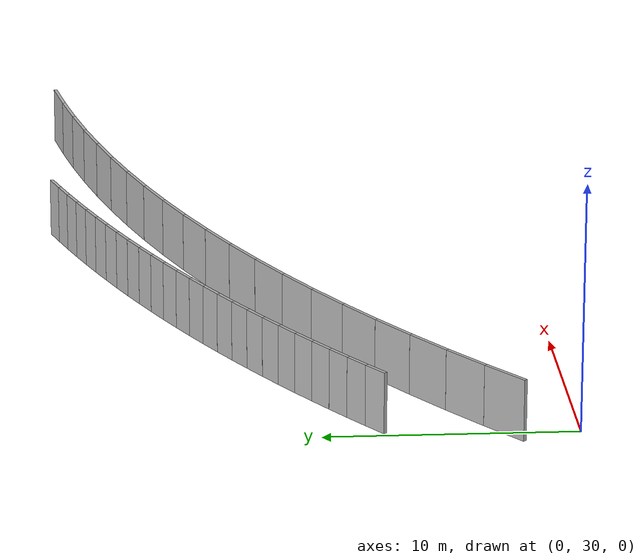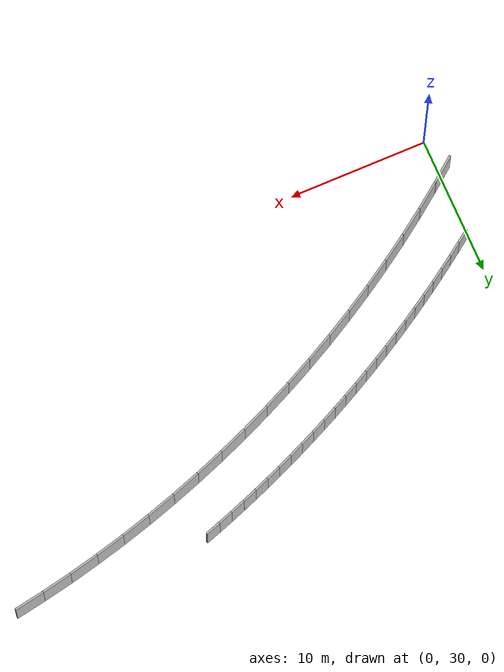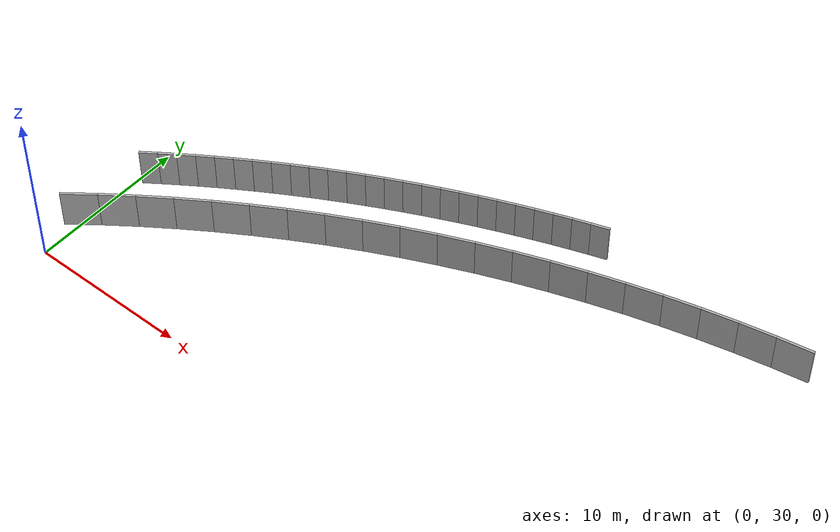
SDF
<?xml version="1.0" ?>
<sdf version="1.6">
  <model name="sps_1304">
    <pose frame="">0 0 0 0 -0 0</pose>
    <static>1</static>
    <self_collide>0</self_collide>
    <allow_auto_disable>0</allow_auto_disable>
    <link name="Wall1653">
      <kinematic>0</kinematic>
      <gravity>1</gravity>
      <self_collide>0</self_collide>
      <collision name="collision">
        <geometry>
          <box>
            <size>1.1106 0.15 2.5</size>
          </box>
        </geometry>
        <pose frame="">0 0 0 0 -0 0</pose>
      </collision>
      <visual name="visual">
        <geometry>
          <box>
            <size>1.1106 0.15 2.5</size>
          </box>
        </geometry>
        <pose frame="">0 0 0 0 -0 0</pose>
        <cast_shadows>1</cast_shadows>
        <transparency>0.0</transparency>
      </visual>
      <pose frame="">0.738059 37.8674 1.25 0 -0 0.624089</pose>
    </link>
    <link name="Wall1654">
      <kinematic>0</kinematic>
      <gravity>1</gravity>
      <self_collide>0</self_collide>
      <collision name="collision">
        <geometry>
          <box>
            <size>1.11045 0.15 2.5</size>
          </box>
        </geometry>
        <pose frame="">0 0 0 0 -0 0</pose>
      </collision>
      <visual name="visual">
        <geometry>
          <box>
            <size>1.11045 0.15 2.5</size>
          </box>
        </geometry>
        <pose frame="">0 0 0 0 -0 0</pose>
        <cast_shadows>1</cast_shadows>
        <transparency>0.0</transparency>
      </visual>
      <pose frame="">1.64327 38.5107 1.25 0 -0 0.611572</pose>
    </link>
    <link name="Wall1655">
      <kinematic>0</kinematic>
      <gravity>1</gravity>
      <self_collide>0</self_collide>
      <collision name="collision">
        <geometry>
          <box>
            <size>1.11047 0.15 2.5</size>
          </box>
        </geometry>
        <pose frame="">0 0 0 0 -0 0</pose>
      </collision>
      <visual name="visual">
        <geometry>
          <box>
            <size>1.11047 0.15 2.5</size>
          </box>
        </geometry>
        <pose frame="">0 0 0 0 -0 0</pose>
        <cast_shadows>1</cast_shadows>
        <transparency>0.0</transparency>
      </visual>
      <pose frame="">2.55645 39.1425 1.25 0 -0 0.598933</pose>
    </link>
    <link name="Wall1656">
      <kinematic>0</kinematic>
      <gravity>1</gravity>
      <self_collide>0</self_collide>
      <collision name="collision">
        <geometry>
          <box>
            <size>1.11055 0.15 2.5</size>
          </box>
        </geometry>
        <pose frame="">0 0 0 0 -0 0</pose>
      </collision>
      <visual name="visual">
        <geometry>
          <box>
            <size>1.11055 0.15 2.5</size>
          </box>
        </geometry>
        <pose frame="">0 0 0 0 -0 0</pose>
        <cast_shadows>1</cast_shadows>
        <transparency>0.0</transparency>
      </visual>
      <pose frame="">3.47774 39.7625 1.25 0 -0 0.585762</pose>
    </link>
    <link name="Wall1657">
      <kinematic>0</kinematic>
      <gravity>1</gravity>
      <self_collide>0</self_collide>
      <collision name="collision">
        <geometry>
          <box>
            <size>1.11051 0.15 2.5</size>
          </box>
        </geometry>
        <pose frame="">0 0 0 0 -0 0</pose>
      </collision>
      <visual name="visual">
        <geometry>
          <box>
            <size>1.11051 0.15 2.5</size>
          </box>
        </geometry>
        <pose frame="">0 0 0 0 -0 0</pose>
        <cast_shadows>1</cast_shadows>
        <transparency>0.0</transparency>
      </visual>
      <pose frame="">4.40685 40.3708 1.25 0 -0 0.573567</pose>
    </link>
    <link name="Wall1658">
      <kinematic>0</kinematic>
      <gravity>1</gravity>
      <self_collide>0</self_collide>
      <collision name="collision">
        <geometry>
          <box>
            <size>1.11041 0.15 2.5</size>
          </box>
        </geometry>
        <pose frame="">0 0 0 0 -0 0</pose>
      </collision>
      <visual name="visual">
        <geometry>
          <box>
            <size>1.11041 0.15 2.5</size>
          </box>
        </geometry>
        <pose frame="">0 0 0 0 -0 0</pose>
        <cast_shadows>1</cast_shadows>
        <transparency>0.0</transparency>
      </visual>
      <pose frame="">5.34334 40.9675 1.25 0 -0 0.561046</pose>
    </link>
    <link name="Wall1659">
      <kinematic>0</kinematic>
      <gravity>1</gravity>
      <self_collide>0</self_collide>
      <collision name="collision">
        <geometry>
          <box>
            <size>1.11051 0.15 2.5</size>
          </box>
        </geometry>
        <pose frame="">0 0 0 0 -0 0</pose>
      </collision>
      <visual name="visual">
        <geometry>
          <box>
            <size>1.11051 0.15 2.5</size>
          </box>
        </geometry>
        <pose frame="">0 0 0 0 -0 0</pose>
        <cast_shadows>1</cast_shadows>
        <transparency>0.0</transparency>
      </visual>
      <pose frame="">6.28725 41.5524 1.25 0 -0 0.54845</pose>
    </link>
    <link name="Wall1660">
      <kinematic>0</kinematic>
      <gravity>1</gravity>
      <self_collide>0</self_collide>
      <collision name="collision">
        <geometry>
          <box>
            <size>1.11061 0.15 2.5</size>
          </box>
        </geometry>
        <pose frame="">0 0 0 0 -0 0</pose>
      </collision>
      <visual name="visual">
        <geometry>
          <box>
            <size>1.11061 0.15 2.5</size>
          </box>
        </geometry>
        <pose frame="">0 0 0 0 -0 0</pose>
        <cast_shadows>1</cast_shadows>
        <transparency>0.0</transparency>
      </visual>
      <pose frame="">7.23855 42.1254 1.25 0 -0 0.53582</pose>
    </link>
    <link name="Wall1661">
      <kinematic>0</kinematic>
      <gravity>1</gravity>
      <self_collide>0</self_collide>
      <collision name="collision">
        <geometry>
          <box>
            <size>1.11046 0.15 2.5</size>
          </box>
        </geometry>
        <pose frame="">0 0 0 0 -0 0</pose>
      </collision>
      <visual name="visual">
        <geometry>
          <box>
            <size>1.11046 0.15 2.5</size>
          </box>
        </geometry>
        <pose frame="">0 0 0 0 -0 0</pose>
        <cast_shadows>1</cast_shadows>
        <transparency>0.0</transparency>
      </visual>
      <pose frame="">8.19704 42.6862 1.25 0 -0 0.522971</pose>
    </link>
    <link name="Wall1662">
      <kinematic>0</kinematic>
      <gravity>1</gravity>
      <self_collide>0</self_collide>
      <collision name="collision">
        <geometry>
          <box>
            <size>1.11045 0.15 2.5</size>
          </box>
        </geometry>
        <pose frame="">0 0 0 0 -0 0</pose>
      </collision>
      <visual name="visual">
        <geometry>
          <box>
            <size>1.11045 0.15 2.5</size>
          </box>
        </geometry>
        <pose frame="">0 0 0 0 -0 0</pose>
        <cast_shadows>1</cast_shadows>
        <transparency>0.0</transparency>
      </visual>
      <pose frame="">9.16256 43.2347 1.25 0 -0 0.51027</pose>
    </link>
    <link name="Wall1663">
      <kinematic>0</kinematic>
      <gravity>1</gravity>
      <self_collide>0</self_collide>
      <collision name="collision">
        <geometry>
          <box>
            <size>1.11057 0.15 2.5</size>
          </box>
        </geometry>
        <pose frame="">0 0 0 0 -0 0</pose>
      </collision>
      <visual name="visual">
        <geometry>
          <box>
            <size>1.11057 0.15 2.5</size>
          </box>
        </geometry>
        <pose frame="">0 0 0 0 -0 0</pose>
        <cast_shadows>1</cast_shadows>
        <transparency>0.0</transparency>
      </visual>
      <pose frame="">10.135 43.771 1.25 0 -0 0.497719</pose>
    </link>
    <link name="Wall1664">
      <kinematic>0</kinematic>
      <gravity>1</gravity>
      <self_collide>0</self_collide>
      <collision name="collision">
        <geometry>
          <box>
            <size>1.11032 0.15 2.5</size>
          </box>
        </geometry>
        <pose frame="">0 0 0 0 -0 0</pose>
      </collision>
      <visual name="visual">
        <geometry>
          <box>
            <size>1.11032 0.15 2.5</size>
          </box>
        </geometry>
        <pose frame="">0 0 0 0 -0 0</pose>
        <cast_shadows>1</cast_shadows>
        <transparency>0.0</transparency>
      </visual>
      <pose frame="">11.114 44.295 1.25 0 -0 0.485185</pose>
    </link>
    <link name="Wall1665">
      <kinematic>0</kinematic>
      <gravity>1</gravity>
      <self_collide>0</self_collide>
      <collision name="collision">
        <geometry>
          <box>
            <size>1.11052 0.15 2.5</size>
          </box>
        </geometry>
        <pose frame="">0 0 0 0 -0 0</pose>
      </collision>
      <visual name="visual">
        <geometry>
          <box>
            <size>1.11052 0.15 2.5</size>
          </box>
        </geometry>
        <pose frame="">0 0 0 0 -0 0</pose>
        <cast_shadows>1</cast_shadows>
        <transparency>0.0</transparency>
      </visual>
      <pose frame="">12.0994 44.8067 1.25 0 -0 0.472644</pose>
    </link>
    <link name="Wall1666">
      <kinematic>0</kinematic>
      <gravity>1</gravity>
      <self_collide>0</self_collide>
      <collision name="collision">
        <geometry>
          <box>
            <size>1.11045 0.15 2.5</size>
          </box>
        </geometry>
        <pose frame="">0 0 0 0 -0 0</pose>
      </collision>
      <visual name="visual">
        <geometry>
          <box>
            <size>1.11045 0.15 2.5</size>
          </box>
        </geometry>
        <pose frame="">0 0 0 0 -0 0</pose>
        <cast_shadows>1</cast_shadows>
        <transparency>0.0</transparency>
      </visual>
      <pose frame="">13.0913 45.306 1.25 0 -0 0.460059</pose>
    </link>
    <link name="Wall1667">
      <kinematic>0</kinematic>
      <gravity>1</gravity>
      <self_collide>0</self_collide>
      <collision name="collision">
        <geometry>
          <box>
            <size>1.11051 0.15 2.5</size>
          </box>
        </geometry>
        <pose frame="">0 0 0 0 -0 0</pose>
      </collision>
      <visual name="visual">
        <geometry>
          <box>
            <size>1.11051 0.15 2.5</size>
          </box>
        </geometry>
        <pose frame="">0 0 0 0 -0 0</pose>
        <cast_shadows>1</cast_shadows>
        <transparency>0.0</transparency>
      </visual>
      <pose frame="">14.0894 45.7927 1.25 0 -0 0.447375</pose>
    </link>
    <link name="Wall1668">
      <kinematic>0</kinematic>
      <gravity>1</gravity>
      <self_collide>0</self_collide>
      <collision name="collision">
        <geometry>
          <box>
            <size>1.11062 0.15 2.5</size>
          </box>
        </geometry>
        <pose frame="">0 0 0 0 -0 0</pose>
      </collision>
      <visual name="visual">
        <geometry>
          <box>
            <size>1.11062 0.15 2.5</size>
          </box>
        </geometry>
        <pose frame="">0 0 0 0 -0 0</pose>
        <cast_shadows>1</cast_shadows>
        <transparency>0.0</transparency>
      </visual>
      <pose frame="">15.0937 46.2667 1.25 0 -0 0.434569</pose>
    </link>
    <link name="Wall1669">
      <kinematic>0</kinematic>
      <gravity>1</gravity>
      <self_collide>0</self_collide>
      <collision name="collision">
        <geometry>
          <box>
            <size>1.1104 0.15 2.5</size>
          </box>
        </geometry>
        <pose frame="">0 0 0 0 -0 0</pose>
      </collision>
      <visual name="visual">
        <geometry>
          <box>
            <size>1.1104 0.15 2.5</size>
          </box>
        </geometry>
        <pose frame="">0 0 0 0 -0 0</pose>
        <cast_shadows>1</cast_shadows>
        <transparency>0.0</transparency>
      </visual>
      <pose frame="">16.1039 46.7279 1.25 0 -0 0.421969</pose>
    </link>
    <link name="Wall1670">
      <kinematic>0</kinematic>
      <gravity>1</gravity>
      <self_collide>0</self_collide>
      <collision name="collision">
        <geometry>
          <box>
            <size>1.11055 0.15 2.5</size>
          </box>
        </geometry>
        <pose frame="">0 0 0 0 -0 0</pose>
      </collision>
      <visual name="visual">
        <geometry>
          <box>
            <size>1.11055 0.15 2.5</size>
          </box>
        </geometry>
        <pose frame="">0 0 0 0 -0 0</pose>
        <cast_shadows>1</cast_shadows>
        <transparency>0.0</transparency>
      </visual>
      <pose frame="">17.1198 47.1763 1.25 0 -0 0.409352</pose>
    </link>
    <link name="Wall1671">
      <kinematic>0</kinematic>
      <gravity>1</gravity>
      <self_collide>0</self_collide>
      <collision name="collision">
        <geometry>
          <box>
            <size>1.11035 0.15 2.5</size>
          </box>
        </geometry>
        <pose frame="">0 0 0 0 -0 0</pose>
      </collision>
      <visual name="visual">
        <geometry>
          <box>
            <size>1.11035 0.15 2.5</size>
          </box>
        </geometry>
        <pose frame="">0 0 0 0 -0 0</pose>
        <cast_shadows>1</cast_shadows>
        <transparency>0.0</transparency>
      </visual>
      <pose frame="">18.1413 47.6119 1.25 0 -0 0.39688</pose>
    </link>
    <link name="Wall1672">
      <kinematic>0</kinematic>
      <gravity>1</gravity>
      <self_collide>0</self_collide>
      <collision name="collision">
        <geometry>
          <box>
            <size>1.11038 0.15 2.5</size>
          </box>
        </geometry>
        <pose frame="">0 0 0 0 -0 0</pose>
      </collision>
      <visual name="visual">
        <geometry>
          <box>
            <size>1.11038 0.15 2.5</size>
          </box>
        </geometry>
        <pose frame="">0 0 0 0 -0 0</pose>
        <cast_shadows>1</cast_shadows>
        <transparency>0.0</transparency>
      </visual>
      <pose frame="">19.168 48.0347 1.25 0 -0 0.384385</pose>
    </link>
    <link name="Wall1673">
      <kinematic>0</kinematic>
      <gravity>1</gravity>
      <self_collide>0</self_collide>
      <collision name="collision">
        <geometry>
          <box>
            <size>1.11057 0.15 2.5</size>
          </box>
        </geometry>
        <pose frame="">0 0 0 0 -0 0</pose>
      </collision>
      <visual name="visual">
        <geometry>
          <box>
            <size>1.11057 0.15 2.5</size>
          </box>
        </geometry>
        <pose frame="">0 0 0 0 -0 0</pose>
        <cast_shadows>1</cast_shadows>
        <transparency>0.0</transparency>
      </visual>
      <pose frame="">20.2 48.4445 1.25 0 -0 0.371546</pose>
    </link>
    <link name="Wall1674">
      <kinematic>0</kinematic>
      <gravity>1</gravity>
      <self_collide>0</self_collide>
      <collision name="collision">
        <geometry>
          <box>
            <size>1.11036 0.15 2.5</size>
          </box>
        </geometry>
        <pose frame="">0 0 0 0 -0 0</pose>
      </collision>
      <visual name="visual">
        <geometry>
          <box>
            <size>1.11036 0.15 2.5</size>
          </box>
        </geometry>
        <pose frame="">0 0 0 0 -0 0</pose>
        <cast_shadows>1</cast_shadows>
        <transparency>0.0</transparency>
      </visual>
      <pose frame="">21.2372 48.8411 1.25 0 -0 0.358906</pose>
    </link>
    <link name="Wall1675">
      <kinematic>0</kinematic>
      <gravity>1</gravity>
      <self_collide>0</self_collide>
      <collision name="collision">
        <geometry>
          <box>
            <size>1.11068 0.15 2.5</size>
          </box>
        </geometry>
        <pose frame="">0 0 0 0 -0 0</pose>
      </collision>
      <visual name="visual">
        <geometry>
          <box>
            <size>1.11068 0.15 2.5</size>
          </box>
        </geometry>
        <pose frame="">0 0 0 0 -0 0</pose>
        <cast_shadows>1</cast_shadows>
        <transparency>0.0</transparency>
      </visual>
      <pose frame="">22.2794 49.2245 1.25 0 -0 0.346151</pose>
    </link>
    <link name="Wall1676">
      <kinematic>0</kinematic>
      <gravity>1</gravity>
      <self_collide>0</self_collide>
      <collision name="collision">
        <geometry>
          <box>
            <size>1.11041 0.15 2.5</size>
          </box>
        </geometry>
        <pose frame="">0 0 0 0 -0 0</pose>
      </collision>
      <visual name="visual">
        <geometry>
          <box>
            <size>1.11041 0.15 2.5</size>
          </box>
        </geometry>
        <pose frame="">0 0 0 0 -0 0</pose>
        <cast_shadows>1</cast_shadows>
        <transparency>0.0</transparency>
      </visual>
      <pose frame="">23.3264 49.5947 1.25 0 -0 0.333588</pose>
    </link>
    <link name="Wall1677">
      <kinematic>0</kinematic>
      <gravity>1</gravity>
      <self_collide>0</self_collide>
      <collision name="collision">
        <geometry>
          <box>
            <size>1.11062 0.15 2.5</size>
          </box>
        </geometry>
        <pose frame="">0 0 0 0 -0 0</pose>
      </collision>
      <visual name="visual">
        <geometry>
          <box>
            <size>1.11062 0.15 2.5</size>
          </box>
        </geometry>
        <pose frame="">0 0 0 0 -0 0</pose>
        <cast_shadows>1</cast_shadows>
        <transparency>0.0</transparency>
      </visual>
      <pose frame="">24.378 49.9518 1.25 0 -0 0.32116</pose>
    </link>
    <link name="Wall1736">
      <kinematic>0</kinematic>
      <gravity>1</gravity>
      <self_collide>0</self_collide>
      <collision name="collision">
        <geometry>
          <box>
            <size>2.18197 0.15 2.5</size>
          </box>
        </geometry>
        <pose frame="">0 0 0 0 -0 0</pose>
      </collision>
      <visual name="visual">
        <geometry>
          <box>
            <size>2.18197 0.15 2.5</size>
          </box>
        </geometry>
        <pose frame="">0 0 0 0 -0 0</pose>
        <cast_shadows>1</cast_shadows>
        <transparency>0.0</transparency>
      </visual>
      <pose frame="">37.521 49.6665 1.25 0 0 -2.96765</pose>
    </link>
    <link name="Wall1737">
      <kinematic>0</kinematic>
      <gravity>1</gravity>
      <self_collide>0</self_collide>
      <collision name="collision">
        <geometry>
          <box>
            <size>2.18191 0.15 2.5</size>
          </box>
        </geometry>
        <pose frame="">0 0 0 0 -0 0</pose>
      </collision>
      <visual name="visual">
        <geometry>
          <box>
            <size>2.18191 0.15 2.5</size>
          </box>
        </geometry>
        <pose frame="">0 0 0 0 -0 0</pose>
        <cast_shadows>1</cast_shadows>
        <transparency>0.0</transparency>
      </visual>
      <pose frame="">35.3772 49.2613 1.25 0 0 -2.94191</pose>
    </link>
    <link name="Wall1738">
      <kinematic>0</kinematic>
      <gravity>1</gravity>
      <self_collide>0</self_collide>
      <collision name="collision">
        <geometry>
          <box>
            <size>2.18191 0.15 2.5</size>
          </box>
        </geometry>
        <pose frame="">0 0 0 0 -0 0</pose>
      </collision>
      <visual name="visual">
        <geometry>
          <box>
            <size>2.18191 0.15 2.5</size>
          </box>
        </geometry>
        <pose frame="">0 0 0 0 -0 0</pose>
        <cast_shadows>1</cast_shadows>
        <transparency>0.0</transparency>
      </visual>
      <pose frame="">33.2446 48.8009 1.25 0 0 -2.91604</pose>
    </link>
    <link name="Wall1739">
      <kinematic>0</kinematic>
      <gravity>1</gravity>
      <self_collide>0</self_collide>
      <collision name="collision">
        <geometry>
          <box>
            <size>2.18199 0.15 2.5</size>
          </box>
        </geometry>
        <pose frame="">0 0 0 0 -0 0</pose>
      </collision>
      <visual name="visual">
        <geometry>
          <box>
            <size>2.18199 0.15 2.5</size>
          </box>
        </geometry>
        <pose frame="">0 0 0 0 -0 0</pose>
        <cast_shadows>1</cast_shadows>
        <transparency>0.0</transparency>
      </visual>
      <pose frame="">31.1245 48.2855 1.25 0 0 -2.8902</pose>
    </link>
    <link name="Wall1740">
      <kinematic>0</kinematic>
      <gravity>1</gravity>
      <self_collide>0</self_collide>
      <collision name="collision">
        <geometry>
          <box>
            <size>2.18208 0.15 2.5</size>
          </box>
        </geometry>
        <pose frame="">0 0 0 0 -0 0</pose>
      </collision>
      <visual name="visual">
        <geometry>
          <box>
            <size>2.18208 0.15 2.5</size>
          </box>
        </geometry>
        <pose frame="">0 0 0 0 -0 0</pose>
        <cast_shadows>1</cast_shadows>
        <transparency>0.0</transparency>
      </visual>
      <pose frame="">29.0185 47.7155 1.25 0 0 -2.86436</pose>
    </link>
    <link name="Wall1741">
      <kinematic>0</kinematic>
      <gravity>1</gravity>
      <self_collide>0</self_collide>
      <collision name="collision">
        <geometry>
          <box>
            <size>2.18184 0.15 2.5</size>
          </box>
        </geometry>
        <pose frame="">0 0 0 0 -0 0</pose>
      </collision>
      <visual name="visual">
        <geometry>
          <box>
            <size>2.18184 0.15 2.5</size>
          </box>
        </geometry>
        <pose frame="">0 0 0 0 -0 0</pose>
        <cast_shadows>1</cast_shadows>
        <transparency>0.0</transparency>
      </visual>
      <pose frame="">26.9279 47.0913 1.25 0 0 -2.83852</pose>
    </link>
    <link name="Wall1742">
      <kinematic>0</kinematic>
      <gravity>1</gravity>
      <self_collide>0</self_collide>
      <collision name="collision">
        <geometry>
          <box>
            <size>2.1818 0.15 2.5</size>
          </box>
        </geometry>
        <pose frame="">0 0 0 0 -0 0</pose>
      </collision>
      <visual name="visual">
        <geometry>
          <box>
            <size>2.1818 0.15 2.5</size>
          </box>
        </geometry>
        <pose frame="">0 0 0 0 -0 0</pose>
        <cast_shadows>1</cast_shadows>
        <transparency>0.0</transparency>
      </visual>
      <pose frame="">24.8543 46.4133 1.25 0 0 -2.81264</pose>
    </link>
    <link name="Wall1743">
      <kinematic>0</kinematic>
      <gravity>1</gravity>
      <self_collide>0</self_collide>
      <collision name="collision">
        <geometry>
          <box>
            <size>2.18192 0.15 2.5</size>
          </box>
        </geometry>
        <pose frame="">0 0 0 0 -0 0</pose>
      </collision>
      <visual name="visual">
        <geometry>
          <box>
            <size>2.18192 0.15 2.5</size>
          </box>
        </geometry>
        <pose frame="">0 0 0 0 -0 0</pose>
        <cast_shadows>1</cast_shadows>
        <transparency>0.0</transparency>
      </visual>
      <pose frame="">22.7989 45.6819 1.25 0 0 -2.7868</pose>
    </link>
    <link name="Wall1744">
      <kinematic>0</kinematic>
      <gravity>1</gravity>
      <self_collide>0</self_collide>
      <collision name="collision">
        <geometry>
          <box>
            <size>2.18215 0.15 2.5</size>
          </box>
        </geometry>
        <pose frame="">0 0 0 0 -0 0</pose>
      </collision>
      <visual name="visual">
        <geometry>
          <box>
            <size>2.18215 0.15 2.5</size>
          </box>
        </geometry>
        <pose frame="">0 0 0 0 -0 0</pose>
        <cast_shadows>1</cast_shadows>
        <transparency>0.0</transparency>
      </visual>
      <pose frame="">20.7628 44.8976 1.25 0 0 -2.761</pose>
    </link>
    <link name="Wall1745">
      <kinematic>0</kinematic>
      <gravity>1</gravity>
      <self_collide>0</self_collide>
      <collision name="collision">
        <geometry>
          <box>
            <size>2.18164 0.15 2.5</size>
          </box>
        </geometry>
        <pose frame="">0 0 0 0 -0 0</pose>
      </collision>
      <visual name="visual">
        <geometry>
          <box>
            <size>2.18164 0.15 2.5</size>
          </box>
        </geometry>
        <pose frame="">0 0 0 0 -0 0</pose>
        <cast_shadows>1</cast_shadows>
        <transparency>0.0</transparency>
      </visual>
      <pose frame="">18.7479 44.0611 1.25 0 0 -2.73522</pose>
    </link>
    <link name="Wall1746">
      <kinematic>0</kinematic>
      <gravity>1</gravity>
      <self_collide>0</self_collide>
      <collision name="collision">
        <geometry>
          <box>
            <size>2.18187 0.15 2.5</size>
          </box>
        </geometry>
        <pose frame="">0 0 0 0 -0 0</pose>
      </collision>
      <visual name="visual">
        <geometry>
          <box>
            <size>2.18187 0.15 2.5</size>
          </box>
        </geometry>
        <pose frame="">0 0 0 0 -0 0</pose>
        <cast_shadows>1</cast_shadows>
        <transparency>0.0</transparency>
      </visual>
      <pose frame="">16.7553 43.1729 1.25 0 0 -2.70935</pose>
    </link>
    <link name="Wall1747">
      <kinematic>0</kinematic>
      <gravity>1</gravity>
      <self_collide>0</self_collide>
      <collision name="collision">
        <geometry>
          <box>
            <size>2.18203 0.15 2.5</size>
          </box>
        </geometry>
        <pose frame="">0 0 0 0 -0 0</pose>
      </collision>
      <visual name="visual">
        <geometry>
          <box>
            <size>2.18203 0.15 2.5</size>
          </box>
        </geometry>
        <pose frame="">0 0 0 0 -0 0</pose>
        <cast_shadows>1</cast_shadows>
        <transparency>0.0</transparency>
      </visual>
      <pose frame="">14.7862 42.2334 1.25 0 0 -2.68347</pose>
    </link>
    <link name="Wall1748">
      <kinematic>0</kinematic>
      <gravity>1</gravity>
      <self_collide>0</self_collide>
      <collision name="collision">
        <geometry>
          <box>
            <size>2.18195 0.15 2.5</size>
          </box>
        </geometry>
        <pose frame="">0 0 0 0 -0 0</pose>
      </collision>
      <visual name="visual">
        <geometry>
          <box>
            <size>2.18195 0.15 2.5</size>
          </box>
        </geometry>
        <pose frame="">0 0 0 0 -0 0</pose>
        <cast_shadows>1</cast_shadows>
        <transparency>0.0</transparency>
      </visual>
      <pose frame="">12.8419 41.2433 1.25 0 0 -2.65765</pose>
    </link>
    <link name="Wall1749">
      <kinematic>0</kinematic>
      <gravity>1</gravity>
      <self_collide>0</self_collide>
      <collision name="collision">
        <geometry>
          <box>
            <size>2.18214 0.15 2.5</size>
          </box>
        </geometry>
        <pose frame="">0 0 0 0 -0 0</pose>
      </collision>
      <visual name="visual">
        <geometry>
          <box>
            <size>2.18214 0.15 2.5</size>
          </box>
        </geometry>
        <pose frame="">0 0 0 0 -0 0</pose>
        <cast_shadows>1</cast_shadows>
        <transparency>0.0</transparency>
      </visual>
      <pose frame="">10.9239 40.2032 1.25 0 0 -2.63173</pose>
    </link>
    <link name="Wall1750">
      <kinematic>0</kinematic>
      <gravity>1</gravity>
      <self_collide>0</self_collide>
      <collision name="collision">
        <geometry>
          <box>
            <size>2.18196 0.15 2.5</size>
          </box>
        </geometry>
        <pose frame="">0 0 0 0 -0 0</pose>
      </collision>
      <visual name="visual">
        <geometry>
          <box>
            <size>2.18196 0.15 2.5</size>
          </box>
        </geometry>
        <pose frame="">0 0 0 0 -0 0</pose>
        <cast_shadows>1</cast_shadows>
        <transparency>0.0</transparency>
      </visual>
      <pose frame="">9.03344 39.1139 1.25 0 0 -2.60599</pose>
    </link>
    <link name="Wall1751">
      <kinematic>0</kinematic>
      <gravity>1</gravity>
      <self_collide>0</self_collide>
      <collision name="collision">
        <geometry>
          <box>
            <size>2.18187 0.15 2.5</size>
          </box>
        </geometry>
        <pose frame="">0 0 0 0 -0 0</pose>
      </collision>
      <visual name="visual">
        <geometry>
          <box>
            <size>2.18187 0.15 2.5</size>
          </box>
        </geometry>
        <pose frame="">0 0 0 0 -0 0</pose>
        <cast_shadows>1</cast_shadows>
        <transparency>0.0</transparency>
      </visual>
      <pose frame="">7.17174 37.9763 1.25 0 0 -2.5802</pose>
    </link>
    <link name="Wall1752">
      <kinematic>0</kinematic>
      <gravity>1</gravity>
      <self_collide>0</self_collide>
      <collision name="collision">
        <geometry>
          <box>
            <size>2.18185 0.15 2.5</size>
          </box>
        </geometry>
        <pose frame="">0 0 0 0 -0 0</pose>
      </collision>
      <visual name="visual">
        <geometry>
          <box>
            <size>2.18185 0.15 2.5</size>
          </box>
        </geometry>
        <pose frame="">0 0 0 0 -0 0</pose>
        <cast_shadows>1</cast_shadows>
        <transparency>0.0</transparency>
      </visual>
      <pose frame="">5.34014 36.791 1.25 0 0 -2.55427</pose>
    </link>
    <link name="Wall1753">
      <kinematic>0</kinematic>
      <gravity>1</gravity>
      <self_collide>0</self_collide>
      <collision name="collision">
        <geometry>
          <box>
            <size>2.18198 0.15 2.5</size>
          </box>
        </geometry>
        <pose frame="">0 0 0 0 -0 0</pose>
      </collision>
      <visual name="visual">
        <geometry>
          <box>
            <size>2.18198 0.15 2.5</size>
          </box>
        </geometry>
        <pose frame="">0 0 0 0 -0 0</pose>
        <cast_shadows>1</cast_shadows>
        <transparency>0.0</transparency>
      </visual>
      <pose frame="">3.53976 35.5587 1.25 0 0 -2.52847</pose>
    </link>
    <link name="Wall1754">
      <kinematic>0</kinematic>
      <gravity>1</gravity>
      <self_collide>0</self_collide>
      <collision name="collision">
        <geometry>
          <box>
            <size>2.18187 0.15 2.5</size>
          </box>
        </geometry>
        <pose frame="">0 0 0 0 -0 0</pose>
      </collision>
      <visual name="visual">
        <geometry>
          <box>
            <size>2.18187 0.15 2.5</size>
          </box>
        </geometry>
        <pose frame="">0 0 0 0 -0 0</pose>
        <cast_shadows>1</cast_shadows>
        <transparency>0.0</transparency>
      </visual>
      <pose frame="">1.77178 34.2803 1.25 0 0 -2.50262</pose>
    </link>
    <link name="Wall1755">
      <kinematic>0</kinematic>
      <gravity>1</gravity>
      <self_collide>0</self_collide>
      <collision name="collision">
        <geometry>
          <box>
            <size>2.18188 0.15 2.5</size>
          </box>
        </geometry>
        <pose frame="">0 0 0 0 -0 0</pose>
      </collision>
      <visual name="visual">
        <geometry>
          <box>
            <size>2.18188 0.15 2.5</size>
          </box>
        </geometry>
        <pose frame="">0 0 0 0 -0 0</pose>
        <cast_shadows>1</cast_shadows>
        <transparency>0.0</transparency>
      </visual>
      <pose frame="">0.0374673 32.9567 1.25 0 0 -2.47679</pose>
    </link>
  </model>
</sdf>
